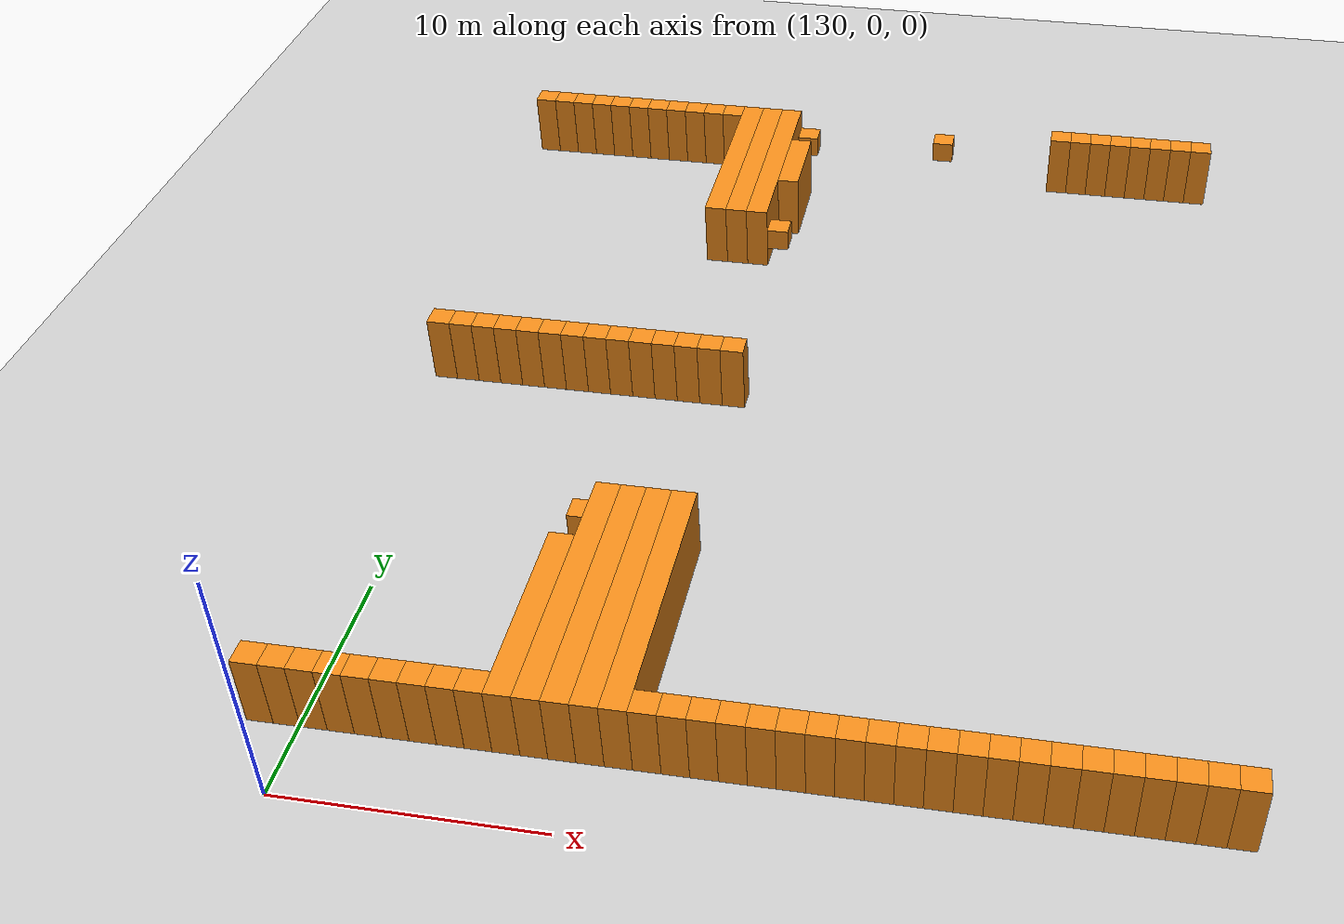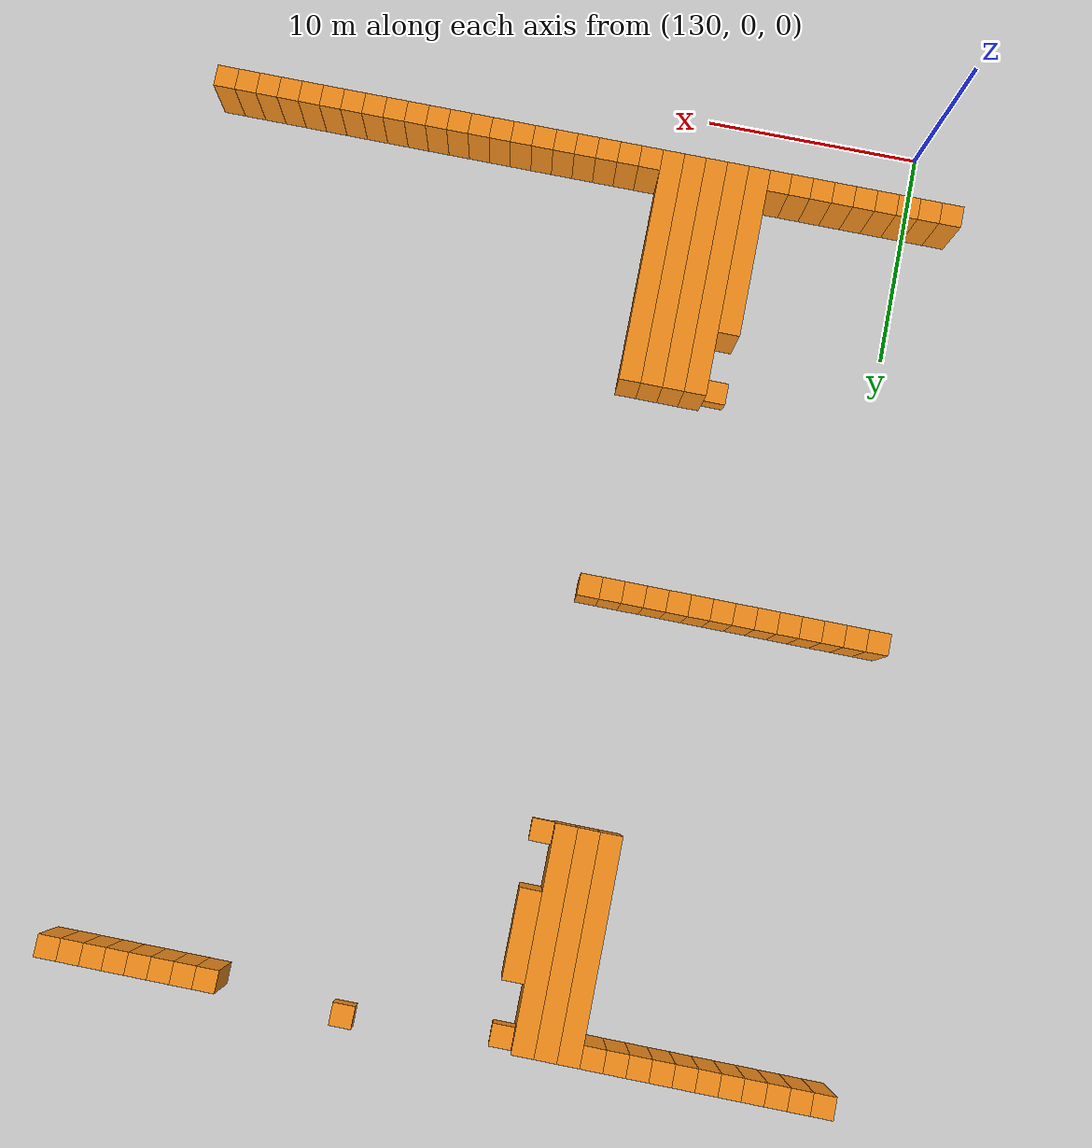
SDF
<sdf version="1.6">
 <world name="default">
  <include><uri>model://ground_plane</uri></include>
  <model name="unit_box_1386">
   <pose>127.50    43.50     1.50 0 0 0</pose>
   <static>1</static>
   <link name="link">
    <inertial>
     <mass>5000</mass>
     <inertia><ixx>200</ixx><ixy>0</ixy><ixz>0</ixz><iyy>200</iyy><iyz>0</iyz><izz>200</izz></inertia>
    </inertial>
    <collision name="collision"><geometry><box><size>1 1 3</size></box></geometry></collision>
    <visual name="visual">
     <geometry><box><size>1 1 3</size></box></geometry>
     <material>
      <script><name>Gazebo/Orange</name><uri>file://media/materials/scripts/gazebo.material</uri></script>
     </material>
    </visual>
   </link>
  </model>
  <model name="unit_box_1390">
   <pose>128.50     3.50     1.50 0 0 0</pose>
   <static>1</static>
   <link name="link">
    <inertial>
     <mass>5000</mass>
     <inertia><ixx>200</ixx><ixy>0</ixy><ixz>0</ixz><iyy>200</iyy><iyz>0</iyz><izz>200</izz></inertia>
    </inertial>
    <collision name="collision"><geometry><box><size>1 1 3</size></box></geometry></collision>
    <visual name="visual">
     <geometry><box><size>1 1 3</size></box></geometry>
     <material>
      <script><name>Gazebo/Orange</name><uri>file://media/materials/scripts/gazebo.material</uri></script>
     </material>
    </visual>
   </link>
  </model>
  <model name="unit_box_1391">
   <pose>128.50    23.50     1.50 0 0 0</pose>
   <static>1</static>
   <link name="link">
    <inertial>
     <mass>5000</mass>
     <inertia><ixx>200</ixx><ixy>0</ixy><ixz>0</ixz><iyy>200</iyy><iyz>0</iyz><izz>200</izz></inertia>
    </inertial>
    <collision name="collision"><geometry><box><size>1 1 3</size></box></geometry></collision>
    <visual name="visual">
     <geometry><box><size>1 1 3</size></box></geometry>
     <material>
      <script><name>Gazebo/Orange</name><uri>file://media/materials/scripts/gazebo.material</uri></script>
     </material>
    </visual>
   </link>
  </model>
  <model name="unit_box_1392">
   <pose>128.50    43.50     1.50 0 0 0</pose>
   <static>1</static>
   <link name="link">
    <inertial>
     <mass>5000</mass>
     <inertia><ixx>200</ixx><ixy>0</ixy><ixz>0</ixz><iyy>200</iyy><iyz>0</iyz><izz>200</izz></inertia>
    </inertial>
    <collision name="collision"><geometry><box><size>1 1 3</size></box></geometry></collision>
    <visual name="visual">
     <geometry><box><size>1 1 3</size></box></geometry>
     <material>
      <script><name>Gazebo/Orange</name><uri>file://media/materials/scripts/gazebo.material</uri></script>
     </material>
    </visual>
   </link>
  </model>
  <model name="unit_box_1397">
   <pose>129.50     3.50     1.50 0 0 0</pose>
   <static>1</static>
   <link name="link">
    <inertial>
     <mass>5000</mass>
     <inertia><ixx>200</ixx><ixy>0</ixy><ixz>0</ixz><iyy>200</iyy><iyz>0</iyz><izz>200</izz></inertia>
    </inertial>
    <collision name="collision"><geometry><box><size>1 1 3</size></box></geometry></collision>
    <visual name="visual">
     <geometry><box><size>1 1 3</size></box></geometry>
     <material>
      <script><name>Gazebo/Orange</name><uri>file://media/materials/scripts/gazebo.material</uri></script>
     </material>
    </visual>
   </link>
  </model>
  <model name="unit_box_1398">
   <pose>129.50    23.50     1.50 0 0 0</pose>
   <static>1</static>
   <link name="link">
    <inertial>
     <mass>5000</mass>
     <inertia><ixx>200</ixx><ixy>0</ixy><ixz>0</ixz><iyy>200</iyy><iyz>0</iyz><izz>200</izz></inertia>
    </inertial>
    <collision name="collision"><geometry><box><size>1 1 3</size></box></geometry></collision>
    <visual name="visual">
     <geometry><box><size>1 1 3</size></box></geometry>
     <material>
      <script><name>Gazebo/Orange</name><uri>file://media/materials/scripts/gazebo.material</uri></script>
     </material>
    </visual>
   </link>
  </model>
  <model name="unit_box_1399">
   <pose>129.50    43.50     1.50 0 0 0</pose>
   <static>1</static>
   <link name="link">
    <inertial>
     <mass>5000</mass>
     <inertia><ixx>200</ixx><ixy>0</ixy><ixz>0</ixz><iyy>200</iyy><iyz>0</iyz><izz>200</izz></inertia>
    </inertial>
    <collision name="collision"><geometry><box><size>1 1 3</size></box></geometry></collision>
    <visual name="visual">
     <geometry><box><size>1 1 3</size></box></geometry>
     <material>
      <script><name>Gazebo/Orange</name><uri>file://media/materials/scripts/gazebo.material</uri></script>
     </material>
    </visual>
   </link>
  </model>
  <model name="unit_box_1404">
   <pose>130.50     3.50     1.50 0 0 0</pose>
   <static>1</static>
   <link name="link">
    <inertial>
     <mass>5000</mass>
     <inertia><ixx>200</ixx><ixy>0</ixy><ixz>0</ixz><iyy>200</iyy><iyz>0</iyz><izz>200</izz></inertia>
    </inertial>
    <collision name="collision"><geometry><box><size>1 1 3</size></box></geometry></collision>
    <visual name="visual">
     <geometry><box><size>1 1 3</size></box></geometry>
     <material>
      <script><name>Gazebo/Orange</name><uri>file://media/materials/scripts/gazebo.material</uri></script>
     </material>
    </visual>
   </link>
  </model>
  <model name="unit_box_1405">
   <pose>130.50    23.50     1.50 0 0 0</pose>
   <static>1</static>
   <link name="link">
    <inertial>
     <mass>5000</mass>
     <inertia><ixx>200</ixx><ixy>0</ixy><ixz>0</ixz><iyy>200</iyy><iyz>0</iyz><izz>200</izz></inertia>
    </inertial>
    <collision name="collision"><geometry><box><size>1 1 3</size></box></geometry></collision>
    <visual name="visual">
     <geometry><box><size>1 1 3</size></box></geometry>
     <material>
      <script><name>Gazebo/Orange</name><uri>file://media/materials/scripts/gazebo.material</uri></script>
     </material>
    </visual>
   </link>
  </model>
  <model name="unit_box_1406">
   <pose>130.50    43.50     1.50 0 0 0</pose>
   <static>1</static>
   <link name="link">
    <inertial>
     <mass>5000</mass>
     <inertia><ixx>200</ixx><ixy>0</ixy><ixz>0</ixz><iyy>200</iyy><iyz>0</iyz><izz>200</izz></inertia>
    </inertial>
    <collision name="collision"><geometry><box><size>1 1 3</size></box></geometry></collision>
    <visual name="visual">
     <geometry><box><size>1 1 3</size></box></geometry>
     <material>
      <script><name>Gazebo/Orange</name><uri>file://media/materials/scripts/gazebo.material</uri></script>
     </material>
    </visual>
   </link>
  </model>
  <model name="unit_box_1412">
   <pose>131.50     3.50     1.50 0 0 0</pose>
   <static>1</static>
   <link name="link">
    <inertial>
     <mass>5000</mass>
     <inertia><ixx>200</ixx><ixy>0</ixy><ixz>0</ixz><iyy>200</iyy><iyz>0</iyz><izz>200</izz></inertia>
    </inertial>
    <collision name="collision"><geometry><box><size>1 1 3</size></box></geometry></collision>
    <visual name="visual">
     <geometry><box><size>1 1 3</size></box></geometry>
     <material>
      <script><name>Gazebo/Orange</name><uri>file://media/materials/scripts/gazebo.material</uri></script>
     </material>
    </visual>
   </link>
  </model>
  <model name="unit_box_1413">
   <pose>131.50    23.50     1.50 0 0 0</pose>
   <static>1</static>
   <link name="link">
    <inertial>
     <mass>5000</mass>
     <inertia><ixx>200</ixx><ixy>0</ixy><ixz>0</ixz><iyy>200</iyy><iyz>0</iyz><izz>200</izz></inertia>
    </inertial>
    <collision name="collision"><geometry><box><size>1 1 3</size></box></geometry></collision>
    <visual name="visual">
     <geometry><box><size>1 1 3</size></box></geometry>
     <material>
      <script><name>Gazebo/Orange</name><uri>file://media/materials/scripts/gazebo.material</uri></script>
     </material>
    </visual>
   </link>
  </model>
  <model name="unit_box_1414">
   <pose>131.50    43.50     1.50 0 0 0</pose>
   <static>1</static>
   <link name="link">
    <inertial>
     <mass>5000</mass>
     <inertia><ixx>200</ixx><ixy>0</ixy><ixz>0</ixz><iyy>200</iyy><iyz>0</iyz><izz>200</izz></inertia>
    </inertial>
    <collision name="collision"><geometry><box><size>1 1 3</size></box></geometry></collision>
    <visual name="visual">
     <geometry><box><size>1 1 3</size></box></geometry>
     <material>
      <script><name>Gazebo/Orange</name><uri>file://media/materials/scripts/gazebo.material</uri></script>
     </material>
    </visual>
   </link>
  </model>
  <model name="unit_box_1419">
   <pose>132.50     3.50     1.50 0 0 0</pose>
   <static>1</static>
   <link name="link">
    <inertial>
     <mass>5000</mass>
     <inertia><ixx>200</ixx><ixy>0</ixy><ixz>0</ixz><iyy>200</iyy><iyz>0</iyz><izz>200</izz></inertia>
    </inertial>
    <collision name="collision"><geometry><box><size>1 1 3</size></box></geometry></collision>
    <visual name="visual">
     <geometry><box><size>1 1 3</size></box></geometry>
     <material>
      <script><name>Gazebo/Orange</name><uri>file://media/materials/scripts/gazebo.material</uri></script>
     </material>
    </visual>
   </link>
  </model>
  <model name="unit_box_1420">
   <pose>132.50    23.50     1.50 0 0 0</pose>
   <static>1</static>
   <link name="link">
    <inertial>
     <mass>5000</mass>
     <inertia><ixx>200</ixx><ixy>0</ixy><ixz>0</ixz><iyy>200</iyy><iyz>0</iyz><izz>200</izz></inertia>
    </inertial>
    <collision name="collision"><geometry><box><size>1 1 3</size></box></geometry></collision>
    <visual name="visual">
     <geometry><box><size>1 1 3</size></box></geometry>
     <material>
      <script><name>Gazebo/Orange</name><uri>file://media/materials/scripts/gazebo.material</uri></script>
     </material>
    </visual>
   </link>
  </model>
  <model name="unit_box_1421">
   <pose>132.50    43.50     1.50 0 0 0</pose>
   <static>1</static>
   <link name="link">
    <inertial>
     <mass>5000</mass>
     <inertia><ixx>200</ixx><ixy>0</ixy><ixz>0</ixz><iyy>200</iyy><iyz>0</iyz><izz>200</izz></inertia>
    </inertial>
    <collision name="collision"><geometry><box><size>1 1 3</size></box></geometry></collision>
    <visual name="visual">
     <geometry><box><size>1 1 3</size></box></geometry>
     <material>
      <script><name>Gazebo/Orange</name><uri>file://media/materials/scripts/gazebo.material</uri></script>
     </material>
    </visual>
   </link>
  </model>
  <model name="unit_box_1426">
   <pose>133.50     3.50     1.50 0 0 0</pose>
   <static>1</static>
   <link name="link">
    <inertial>
     <mass>5000</mass>
     <inertia><ixx>200</ixx><ixy>0</ixy><ixz>0</ixz><iyy>200</iyy><iyz>0</iyz><izz>200</izz></inertia>
    </inertial>
    <collision name="collision"><geometry><box><size>1 1 3</size></box></geometry></collision>
    <visual name="visual">
     <geometry><box><size>1 1 3</size></box></geometry>
     <material>
      <script><name>Gazebo/Orange</name><uri>file://media/materials/scripts/gazebo.material</uri></script>
     </material>
    </visual>
   </link>
  </model>
  <model name="unit_box_1427">
   <pose>133.50    23.50     1.50 0 0 0</pose>
   <static>1</static>
   <link name="link">
    <inertial>
     <mass>5000</mass>
     <inertia><ixx>200</ixx><ixy>0</ixy><ixz>0</ixz><iyy>200</iyy><iyz>0</iyz><izz>200</izz></inertia>
    </inertial>
    <collision name="collision"><geometry><box><size>1 1 3</size></box></geometry></collision>
    <visual name="visual">
     <geometry><box><size>1 1 3</size></box></geometry>
     <material>
      <script><name>Gazebo/Orange</name><uri>file://media/materials/scripts/gazebo.material</uri></script>
     </material>
    </visual>
   </link>
  </model>
  <model name="unit_box_1428">
   <pose>133.50    43.50     1.50 0 0 0</pose>
   <static>1</static>
   <link name="link">
    <inertial>
     <mass>5000</mass>
     <inertia><ixx>200</ixx><ixy>0</ixy><ixz>0</ixz><iyy>200</iyy><iyz>0</iyz><izz>200</izz></inertia>
    </inertial>
    <collision name="collision"><geometry><box><size>1 1 3</size></box></geometry></collision>
    <visual name="visual">
     <geometry><box><size>1 1 3</size></box></geometry>
     <material>
      <script><name>Gazebo/Orange</name><uri>file://media/materials/scripts/gazebo.material</uri></script>
     </material>
    </visual>
   </link>
  </model>
  <model name="unit_box_1433">
   <pose>134.50     3.50     1.50 0 0 0</pose>
   <static>1</static>
   <link name="link">
    <inertial>
     <mass>5000</mass>
     <inertia><ixx>200</ixx><ixy>0</ixy><ixz>0</ixz><iyy>200</iyy><iyz>0</iyz><izz>200</izz></inertia>
    </inertial>
    <collision name="collision"><geometry><box><size>1 1 3</size></box></geometry></collision>
    <visual name="visual">
     <geometry><box><size>1 1 3</size></box></geometry>
     <material>
      <script><name>Gazebo/Orange</name><uri>file://media/materials/scripts/gazebo.material</uri></script>
     </material>
    </visual>
   </link>
  </model>
  <model name="unit_box_1434">
   <pose>134.50    23.50     1.50 0 0 0</pose>
   <static>1</static>
   <link name="link">
    <inertial>
     <mass>5000</mass>
     <inertia><ixx>200</ixx><ixy>0</ixy><ixz>0</ixz><iyy>200</iyy><iyz>0</iyz><izz>200</izz></inertia>
    </inertial>
    <collision name="collision"><geometry><box><size>1 1 3</size></box></geometry></collision>
    <visual name="visual">
     <geometry><box><size>1 1 3</size></box></geometry>
     <material>
      <script><name>Gazebo/Orange</name><uri>file://media/materials/scripts/gazebo.material</uri></script>
     </material>
    </visual>
   </link>
  </model>
  <model name="unit_box_1435">
   <pose>134.50    43.50     1.50 0 0 0</pose>
   <static>1</static>
   <link name="link">
    <inertial>
     <mass>5000</mass>
     <inertia><ixx>200</ixx><ixy>0</ixy><ixz>0</ixz><iyy>200</iyy><iyz>0</iyz><izz>200</izz></inertia>
    </inertial>
    <collision name="collision"><geometry><box><size>1 1 3</size></box></geometry></collision>
    <visual name="visual">
     <geometry><box><size>1 1 3</size></box></geometry>
     <material>
      <script><name>Gazebo/Orange</name><uri>file://media/materials/scripts/gazebo.material</uri></script>
     </material>
    </visual>
   </link>
  </model>
  <model name="unit_box_1440">
   <pose>135.50     3.50     1.50 0 0 0</pose>
   <static>1</static>
   <link name="link">
    <inertial>
     <mass>5000</mass>
     <inertia><ixx>200</ixx><ixy>0</ixy><ixz>0</ixz><iyy>200</iyy><iyz>0</iyz><izz>200</izz></inertia>
    </inertial>
    <collision name="collision"><geometry><box><size>1 1 3</size></box></geometry></collision>
    <visual name="visual">
     <geometry><box><size>1 1 3</size></box></geometry>
     <material>
      <script><name>Gazebo/Orange</name><uri>file://media/materials/scripts/gazebo.material</uri></script>
     </material>
    </visual>
   </link>
  </model>
  <model name="unit_box_1441">
   <pose>135.50    23.50     1.50 0 0 0</pose>
   <static>1</static>
   <link name="link">
    <inertial>
     <mass>5000</mass>
     <inertia><ixx>200</ixx><ixy>0</ixy><ixz>0</ixz><iyy>200</iyy><iyz>0</iyz><izz>200</izz></inertia>
    </inertial>
    <collision name="collision"><geometry><box><size>1 1 3</size></box></geometry></collision>
    <visual name="visual">
     <geometry><box><size>1 1 3</size></box></geometry>
     <material>
      <script><name>Gazebo/Orange</name><uri>file://media/materials/scripts/gazebo.material</uri></script>
     </material>
    </visual>
   </link>
  </model>
  <model name="unit_box_1442">
   <pose>135.50    43.50     1.50 0 0 0</pose>
   <static>1</static>
   <link name="link">
    <inertial>
     <mass>5000</mass>
     <inertia><ixx>200</ixx><ixy>0</ixy><ixz>0</ixz><iyy>200</iyy><iyz>0</iyz><izz>200</izz></inertia>
    </inertial>
    <collision name="collision"><geometry><box><size>1 1 3</size></box></geometry></collision>
    <visual name="visual">
     <geometry><box><size>1 1 3</size></box></geometry>
     <material>
      <script><name>Gazebo/Orange</name><uri>file://media/materials/scripts/gazebo.material</uri></script>
     </material>
    </visual>
   </link>
  </model>
  <model name="unit_box_1455">
   <pose>136.50     3.50     1.50 0 0 0</pose>
   <static>1</static>
   <link name="link">
    <inertial>
     <mass>5000</mass>
     <inertia><ixx>200</ixx><ixy>0</ixy><ixz>0</ixz><iyy>200</iyy><iyz>0</iyz><izz>200</izz></inertia>
    </inertial>
    <collision name="collision"><geometry><box><size>1 1 3</size></box></geometry></collision>
    <visual name="visual">
     <geometry><box><size>1 1 3</size></box></geometry>
     <material>
      <script><name>Gazebo/Orange</name><uri>file://media/materials/scripts/gazebo.material</uri></script>
     </material>
    </visual>
   </link>
  </model>
  <model name="unit_box_1456">
   <pose>136.50    23.50     1.50 0 0 0</pose>
   <static>1</static>
   <link name="link">
    <inertial>
     <mass>5000</mass>
     <inertia><ixx>200</ixx><ixy>0</ixy><ixz>0</ixz><iyy>200</iyy><iyz>0</iyz><izz>200</izz></inertia>
    </inertial>
    <collision name="collision"><geometry><box><size>1 1 3</size></box></geometry></collision>
    <visual name="visual">
     <geometry><box><size>1 1 3</size></box></geometry>
     <material>
      <script><name>Gazebo/Orange</name><uri>file://media/materials/scripts/gazebo.material</uri></script>
     </material>
    </visual>
   </link>
  </model>
  <model name="unit_box_1457">
   <pose>136.50    43.50     1.50 0 0 0</pose>
   <static>1</static>
   <link name="link">
    <inertial>
     <mass>5000</mass>
     <inertia><ixx>200</ixx><ixy>0</ixy><ixz>0</ixz><iyy>200</iyy><iyz>0</iyz><izz>200</izz></inertia>
    </inertial>
    <collision name="collision"><geometry><box><size>1 1 3</size></box></geometry></collision>
    <visual name="visual">
     <geometry><box><size>1 1 3</size></box></geometry>
     <material>
      <script><name>Gazebo/Orange</name><uri>file://media/materials/scripts/gazebo.material</uri></script>
     </material>
    </visual>
   </link>
  </model>
  <model name="unit_box_1468">
   <pose>137.50     7.00     1.50 0 0 0</pose>
   <static>1</static>
   <link name="link">
    <inertial>
     <mass>5000</mass>
     <inertia><ixx>200</ixx><ixy>0</ixy><ixz>0</ixz><iyy>200</iyy><iyz>0</iyz><izz>200</izz></inertia>
    </inertial>
    <collision name="collision"><geometry><box><size>1 8 3</size></box></geometry></collision>
    <visual name="visual">
     <geometry><box><size>1 8 3</size></box></geometry>
     <material>
      <script><name>Gazebo/Orange</name><uri>file://media/materials/scripts/gazebo.material</uri></script>
     </material>
    </visual>
   </link>
  </model>
  <model name="unit_box_1469">
   <pose>137.50    13.50     1.50 0 0 0</pose>
   <static>1</static>
   <link name="link">
    <inertial>
     <mass>5000</mass>
     <inertia><ixx>200</ixx><ixy>0</ixy><ixz>0</ixz><iyy>200</iyy><iyz>0</iyz><izz>200</izz></inertia>
    </inertial>
    <collision name="collision"><geometry><box><size>1 1 1</size></box></geometry></collision>
    <visual name="visual">
     <geometry><box><size>1 1 1</size></box></geometry>
     <material>
      <script><name>Gazebo/Orange</name><uri>file://media/materials/scripts/gazebo.material</uri></script>
     </material>
    </visual>
   </link>
  </model>
  <model name="unit_box_1470">
   <pose>137.50    23.50     1.50 0 0 0</pose>
   <static>1</static>
   <link name="link">
    <inertial>
     <mass>5000</mass>
     <inertia><ixx>200</ixx><ixy>0</ixy><ixz>0</ixz><iyy>200</iyy><iyz>0</iyz><izz>200</izz></inertia>
    </inertial>
    <collision name="collision"><geometry><box><size>1 1 3</size></box></geometry></collision>
    <visual name="visual">
     <geometry><box><size>1 1 3</size></box></geometry>
     <material>
      <script><name>Gazebo/Orange</name><uri>file://media/materials/scripts/gazebo.material</uri></script>
     </material>
    </visual>
   </link>
  </model>
  <model name="unit_box_1471">
   <pose>137.50    43.50     1.50 0 0 0</pose>
   <static>1</static>
   <link name="link">
    <inertial>
     <mass>5000</mass>
     <inertia><ixx>200</ixx><ixy>0</ixy><ixz>0</ixz><iyy>200</iyy><iyz>0</iyz><izz>200</izz></inertia>
    </inertial>
    <collision name="collision"><geometry><box><size>1 1 3</size></box></geometry></collision>
    <visual name="visual">
     <geometry><box><size>1 1 3</size></box></geometry>
     <material>
      <script><name>Gazebo/Orange</name><uri>file://media/materials/scripts/gazebo.material</uri></script>
     </material>
    </visual>
   </link>
  </model>
  <model name="unit_box_1482">
   <pose>138.50     8.50     1.50 0 0 0</pose>
   <static>1</static>
   <link name="link">
    <inertial>
     <mass>5000</mass>
     <inertia><ixx>200</ixx><ixy>0</ixy><ixz>0</ixz><iyy>200</iyy><iyz>0</iyz><izz>200</izz></inertia>
    </inertial>
    <collision name="collision"><geometry><box><size>1 11 3</size></box></geometry></collision>
    <visual name="visual">
     <geometry><box><size>1 11 3</size></box></geometry>
     <material>
      <script><name>Gazebo/Orange</name><uri>file://media/materials/scripts/gazebo.material</uri></script>
     </material>
    </visual>
   </link>
  </model>
  <model name="unit_box_1483">
   <pose>138.50    23.50     1.50 0 0 0</pose>
   <static>1</static>
   <link name="link">
    <inertial>
     <mass>5000</mass>
     <inertia><ixx>200</ixx><ixy>0</ixy><ixz>0</ixz><iyy>200</iyy><iyz>0</iyz><izz>200</izz></inertia>
    </inertial>
    <collision name="collision"><geometry><box><size>1 1 3</size></box></geometry></collision>
    <visual name="visual">
     <geometry><box><size>1 1 3</size></box></geometry>
     <material>
      <script><name>Gazebo/Orange</name><uri>file://media/materials/scripts/gazebo.material</uri></script>
     </material>
    </visual>
   </link>
  </model>
  <model name="unit_box_1484">
   <pose>138.50    39.00     1.50 0 0 0</pose>
   <static>1</static>
   <link name="link">
    <inertial>
     <mass>5000</mass>
     <inertia><ixx>200</ixx><ixy>0</ixy><ixz>0</ixz><iyy>200</iyy><iyz>0</iyz><izz>200</izz></inertia>
    </inertial>
    <collision name="collision"><geometry><box><size>1 10 3</size></box></geometry></collision>
    <visual name="visual">
     <geometry><box><size>1 10 3</size></box></geometry>
     <material>
      <script><name>Gazebo/Orange</name><uri>file://media/materials/scripts/gazebo.material</uri></script>
     </material>
    </visual>
   </link>
  </model>
  <model name="unit_box_1495">
   <pose>139.50     8.50     1.50 0 0 0</pose>
   <static>1</static>
   <link name="link">
    <inertial>
     <mass>5000</mass>
     <inertia><ixx>200</ixx><ixy>0</ixy><ixz>0</ixz><iyy>200</iyy><iyz>0</iyz><izz>200</izz></inertia>
    </inertial>
    <collision name="collision"><geometry><box><size>1 11 3</size></box></geometry></collision>
    <visual name="visual">
     <geometry><box><size>1 11 3</size></box></geometry>
     <material>
      <script><name>Gazebo/Orange</name><uri>file://media/materials/scripts/gazebo.material</uri></script>
     </material>
    </visual>
   </link>
  </model>
  <model name="unit_box_1496">
   <pose>139.50    23.50     1.50 0 0 0</pose>
   <static>1</static>
   <link name="link">
    <inertial>
     <mass>5000</mass>
     <inertia><ixx>200</ixx><ixy>0</ixy><ixz>0</ixz><iyy>200</iyy><iyz>0</iyz><izz>200</izz></inertia>
    </inertial>
    <collision name="collision"><geometry><box><size>1 1 3</size></box></geometry></collision>
    <visual name="visual">
     <geometry><box><size>1 1 3</size></box></geometry>
     <material>
      <script><name>Gazebo/Orange</name><uri>file://media/materials/scripts/gazebo.material</uri></script>
     </material>
    </visual>
   </link>
  </model>
  <model name="unit_box_1497">
   <pose>139.50    39.00     1.50 0 0 0</pose>
   <static>1</static>
   <link name="link">
    <inertial>
     <mass>5000</mass>
     <inertia><ixx>200</ixx><ixy>0</ixy><ixz>0</ixz><iyy>200</iyy><iyz>0</iyz><izz>200</izz></inertia>
    </inertial>
    <collision name="collision"><geometry><box><size>1 10 3</size></box></geometry></collision>
    <visual name="visual">
     <geometry><box><size>1 10 3</size></box></geometry>
     <material>
      <script><name>Gazebo/Orange</name><uri>file://media/materials/scripts/gazebo.material</uri></script>
     </material>
    </visual>
   </link>
  </model>
  <model name="unit_box_1508">
   <pose>140.50     8.50     1.50 0 0 0</pose>
   <static>1</static>
   <link name="link">
    <inertial>
     <mass>5000</mass>
     <inertia><ixx>200</ixx><ixy>0</ixy><ixz>0</ixz><iyy>200</iyy><iyz>0</iyz><izz>200</izz></inertia>
    </inertial>
    <collision name="collision"><geometry><box><size>1 11 3</size></box></geometry></collision>
    <visual name="visual">
     <geometry><box><size>1 11 3</size></box></geometry>
     <material>
      <script><name>Gazebo/Orange</name><uri>file://media/materials/scripts/gazebo.material</uri></script>
     </material>
    </visual>
   </link>
  </model>
  <model name="unit_box_1509">
   <pose>140.50    23.50     1.50 0 0 0</pose>
   <static>1</static>
   <link name="link">
    <inertial>
     <mass>5000</mass>
     <inertia><ixx>200</ixx><ixy>0</ixy><ixz>0</ixz><iyy>200</iyy><iyz>0</iyz><izz>200</izz></inertia>
    </inertial>
    <collision name="collision"><geometry><box><size>1 1 3</size></box></geometry></collision>
    <visual name="visual">
     <geometry><box><size>1 1 3</size></box></geometry>
     <material>
      <script><name>Gazebo/Orange</name><uri>file://media/materials/scripts/gazebo.material</uri></script>
     </material>
    </visual>
   </link>
  </model>
  <model name="unit_box_1510">
   <pose>140.50    39.00     1.50 0 0 0</pose>
   <static>1</static>
   <link name="link">
    <inertial>
     <mass>5000</mass>
     <inertia><ixx>200</ixx><ixy>0</ixy><ixz>0</ixz><iyy>200</iyy><iyz>0</iyz><izz>200</izz></inertia>
    </inertial>
    <collision name="collision"><geometry><box><size>1 10 3</size></box></geometry></collision>
    <visual name="visual">
     <geometry><box><size>1 10 3</size></box></geometry>
     <material>
      <script><name>Gazebo/Orange</name><uri>file://media/materials/scripts/gazebo.material</uri></script>
     </material>
    </visual>
   </link>
  </model>
  <model name="unit_box_1520">
   <pose>141.50     8.50     1.50 0 0 0</pose>
   <static>1</static>
   <link name="link">
    <inertial>
     <mass>5000</mass>
     <inertia><ixx>200</ixx><ixy>0</ixy><ixz>0</ixz><iyy>200</iyy><iyz>0</iyz><izz>200</izz></inertia>
    </inertial>
    <collision name="collision"><geometry><box><size>1 11 3</size></box></geometry></collision>
    <visual name="visual">
     <geometry><box><size>1 11 3</size></box></geometry>
     <material>
      <script><name>Gazebo/Orange</name><uri>file://media/materials/scripts/gazebo.material</uri></script>
     </material>
    </visual>
   </link>
  </model>
  <model name="unit_box_1521">
   <pose>141.50    23.50     1.50 0 0 0</pose>
   <static>1</static>
   <link name="link">
    <inertial>
     <mass>5000</mass>
     <inertia><ixx>200</ixx><ixy>0</ixy><ixz>0</ixz><iyy>200</iyy><iyz>0</iyz><izz>200</izz></inertia>
    </inertial>
    <collision name="collision"><geometry><box><size>1 1 3</size></box></geometry></collision>
    <visual name="visual">
     <geometry><box><size>1 1 3</size></box></geometry>
     <material>
      <script><name>Gazebo/Orange</name><uri>file://media/materials/scripts/gazebo.material</uri></script>
     </material>
    </visual>
   </link>
  </model>
  <model name="unit_box_1522">
   <pose>141.50    34.50     1.50 0 0 0</pose>
   <static>1</static>
   <link name="link">
    <inertial>
     <mass>5000</mass>
     <inertia><ixx>200</ixx><ixy>0</ixy><ixz>0</ixz><iyy>200</iyy><iyz>0</iyz><izz>200</izz></inertia>
    </inertial>
    <collision name="collision"><geometry><box><size>1 1 1</size></box></geometry></collision>
    <visual name="visual">
     <geometry><box><size>1 1 1</size></box></geometry>
     <material>
      <script><name>Gazebo/Orange</name><uri>file://media/materials/scripts/gazebo.material</uri></script>
     </material>
    </visual>
   </link>
  </model>
  <model name="unit_box_1523">
   <pose>141.50    39.00     1.50 0 0 0</pose>
   <static>1</static>
   <link name="link">
    <inertial>
     <mass>5000</mass>
     <inertia><ixx>200</ixx><ixy>0</ixy><ixz>0</ixz><iyy>200</iyy><iyz>0</iyz><izz>200</izz></inertia>
    </inertial>
    <collision name="collision"><geometry><box><size>1 4 3</size></box></geometry></collision>
    <visual name="visual">
     <geometry><box><size>1 4 3</size></box></geometry>
     <material>
      <script><name>Gazebo/Orange</name><uri>file://media/materials/scripts/gazebo.material</uri></script>
     </material>
    </visual>
   </link>
  </model>
  <model name="unit_box_1524">
   <pose>141.50    43.50     1.50 0 0 0</pose>
   <static>1</static>
   <link name="link">
    <inertial>
     <mass>5000</mass>
     <inertia><ixx>200</ixx><ixy>0</ixy><ixz>0</ixz><iyy>200</iyy><iyz>0</iyz><izz>200</izz></inertia>
    </inertial>
    <collision name="collision"><geometry><box><size>1 1 1</size></box></geometry></collision>
    <visual name="visual">
     <geometry><box><size>1 1 1</size></box></geometry>
     <material>
      <script><name>Gazebo/Orange</name><uri>file://media/materials/scripts/gazebo.material</uri></script>
     </material>
    </visual>
   </link>
  </model>
  <model name="unit_box_1532">
   <pose>142.50     3.50     1.50 0 0 0</pose>
   <static>1</static>
   <link name="link">
    <inertial>
     <mass>5000</mass>
     <inertia><ixx>200</ixx><ixy>0</ixy><ixz>0</ixz><iyy>200</iyy><iyz>0</iyz><izz>200</izz></inertia>
    </inertial>
    <collision name="collision"><geometry><box><size>1 1 3</size></box></geometry></collision>
    <visual name="visual">
     <geometry><box><size>1 1 3</size></box></geometry>
     <material>
      <script><name>Gazebo/Orange</name><uri>file://media/materials/scripts/gazebo.material</uri></script>
     </material>
    </visual>
   </link>
  </model>
  <model name="unit_box_1539">
   <pose>143.50     3.50     1.50 0 0 0</pose>
   <static>1</static>
   <link name="link">
    <inertial>
     <mass>5000</mass>
     <inertia><ixx>200</ixx><ixy>0</ixy><ixz>0</ixz><iyy>200</iyy><iyz>0</iyz><izz>200</izz></inertia>
    </inertial>
    <collision name="collision"><geometry><box><size>1 1 3</size></box></geometry></collision>
    <visual name="visual">
     <geometry><box><size>1 1 3</size></box></geometry>
     <material>
      <script><name>Gazebo/Orange</name><uri>file://media/materials/scripts/gazebo.material</uri></script>
     </material>
    </visual>
   </link>
  </model>
  <model name="unit_box_1546">
   <pose>144.50     3.50     1.50 0 0 0</pose>
   <static>1</static>
   <link name="link">
    <inertial>
     <mass>5000</mass>
     <inertia><ixx>200</ixx><ixy>0</ixy><ixz>0</ixz><iyy>200</iyy><iyz>0</iyz><izz>200</izz></inertia>
    </inertial>
    <collision name="collision"><geometry><box><size>1 1 3</size></box></geometry></collision>
    <visual name="visual">
     <geometry><box><size>1 1 3</size></box></geometry>
     <material>
      <script><name>Gazebo/Orange</name><uri>file://media/materials/scripts/gazebo.material</uri></script>
     </material>
    </visual>
   </link>
  </model>
  <model name="unit_box_1553">
   <pose>145.50     3.50     1.50 0 0 0</pose>
   <static>1</static>
   <link name="link">
    <inertial>
     <mass>5000</mass>
     <inertia><ixx>200</ixx><ixy>0</ixy><ixz>0</ixz><iyy>200</iyy><iyz>0</iyz><izz>200</izz></inertia>
    </inertial>
    <collision name="collision"><geometry><box><size>1 1 3</size></box></geometry></collision>
    <visual name="visual">
     <geometry><box><size>1 1 3</size></box></geometry>
     <material>
      <script><name>Gazebo/Orange</name><uri>file://media/materials/scripts/gazebo.material</uri></script>
     </material>
    </visual>
   </link>
  </model>
  <model name="unit_box_1560">
   <pose>146.50     3.50     1.50 0 0 0</pose>
   <static>1</static>
   <link name="link">
    <inertial>
     <mass>5000</mass>
     <inertia><ixx>200</ixx><ixy>0</ixy><ixz>0</ixz><iyy>200</iyy><iyz>0</iyz><izz>200</izz></inertia>
    </inertial>
    <collision name="collision"><geometry><box><size>1 1 3</size></box></geometry></collision>
    <visual name="visual">
     <geometry><box><size>1 1 3</size></box></geometry>
     <material>
      <script><name>Gazebo/Orange</name><uri>file://media/materials/scripts/gazebo.material</uri></script>
     </material>
    </visual>
   </link>
  </model>
  <model name="unit_box_1567">
   <pose>147.50     3.50     1.50 0 0 0</pose>
   <static>1</static>
   <link name="link">
    <inertial>
     <mass>5000</mass>
     <inertia><ixx>200</ixx><ixy>0</ixy><ixz>0</ixz><iyy>200</iyy><iyz>0</iyz><izz>200</izz></inertia>
    </inertial>
    <collision name="collision"><geometry><box><size>1 1 3</size></box></geometry></collision>
    <visual name="visual">
     <geometry><box><size>1 1 3</size></box></geometry>
     <material>
      <script><name>Gazebo/Orange</name><uri>file://media/materials/scripts/gazebo.material</uri></script>
     </material>
    </visual>
   </link>
  </model>
  <model name="unit_box_1574">
   <pose>148.50     3.50     1.50 0 0 0</pose>
   <static>1</static>
   <link name="link">
    <inertial>
     <mass>5000</mass>
     <inertia><ixx>200</ixx><ixy>0</ixy><ixz>0</ixz><iyy>200</iyy><iyz>0</iyz><izz>200</izz></inertia>
    </inertial>
    <collision name="collision"><geometry><box><size>1 1 3</size></box></geometry></collision>
    <visual name="visual">
     <geometry><box><size>1 1 3</size></box></geometry>
     <material>
      <script><name>Gazebo/Orange</name><uri>file://media/materials/scripts/gazebo.material</uri></script>
     </material>
    </visual>
   </link>
  </model>
  <model name="unit_box_1575">
   <pose>148.50    44.00     1.50 0 0 0</pose>
   <static>1</static>
   <link name="link">
    <inertial>
     <mass>5000</mass>
     <inertia><ixx>200</ixx><ixy>0</ixy><ixz>0</ixz><iyy>200</iyy><iyz>0</iyz><izz>200</izz></inertia>
    </inertial>
    <collision name="collision"><geometry><box><size>1 1 1</size></box></geometry></collision>
    <visual name="visual">
     <geometry><box><size>1 1 1</size></box></geometry>
     <material>
      <script><name>Gazebo/Orange</name><uri>file://media/materials/scripts/gazebo.material</uri></script>
     </material>
    </visual>
   </link>
  </model>
  <model name="unit_box_1582">
   <pose>149.50     3.50     1.50 0 0 0</pose>
   <static>1</static>
   <link name="link">
    <inertial>
     <mass>5000</mass>
     <inertia><ixx>200</ixx><ixy>0</ixy><ixz>0</ixz><iyy>200</iyy><iyz>0</iyz><izz>200</izz></inertia>
    </inertial>
    <collision name="collision"><geometry><box><size>1 1 3</size></box></geometry></collision>
    <visual name="visual">
     <geometry><box><size>1 1 3</size></box></geometry>
     <material>
      <script><name>Gazebo/Orange</name><uri>file://media/materials/scripts/gazebo.material</uri></script>
     </material>
    </visual>
   </link>
  </model>
  <model name="unit_box_1591">
   <pose>150.50     3.50     1.50 0 0 0</pose>
   <static>1</static>
   <link name="link">
    <inertial>
     <mass>5000</mass>
     <inertia><ixx>200</ixx><ixy>0</ixy><ixz>0</ixz><iyy>200</iyy><iyz>0</iyz><izz>200</izz></inertia>
    </inertial>
    <collision name="collision"><geometry><box><size>1 1 3</size></box></geometry></collision>
    <visual name="visual">
     <geometry><box><size>1 1 3</size></box></geometry>
     <material>
      <script><name>Gazebo/Orange</name><uri>file://media/materials/scripts/gazebo.material</uri></script>
     </material>
    </visual>
   </link>
  </model>
  <model name="unit_box_1599">
   <pose>151.50     3.50     1.50 0 0 0</pose>
   <static>1</static>
   <link name="link">
    <inertial>
     <mass>5000</mass>
     <inertia><ixx>200</ixx><ixy>0</ixy><ixz>0</ixz><iyy>200</iyy><iyz>0</iyz><izz>200</izz></inertia>
    </inertial>
    <collision name="collision"><geometry><box><size>1 1 3</size></box></geometry></collision>
    <visual name="visual">
     <geometry><box><size>1 1 3</size></box></geometry>
     <material>
      <script><name>Gazebo/Orange</name><uri>file://media/materials/scripts/gazebo.material</uri></script>
     </material>
    </visual>
   </link>
  </model>
  <model name="unit_box_1608">
   <pose>152.50     3.50     1.50 0 0 0</pose>
   <static>1</static>
   <link name="link">
    <inertial>
     <mass>5000</mass>
     <inertia><ixx>200</ixx><ixy>0</ixy><ixz>0</ixz><iyy>200</iyy><iyz>0</iyz><izz>200</izz></inertia>
    </inertial>
    <collision name="collision"><geometry><box><size>1 1 3</size></box></geometry></collision>
    <visual name="visual">
     <geometry><box><size>1 1 3</size></box></geometry>
     <material>
      <script><name>Gazebo/Orange</name><uri>file://media/materials/scripts/gazebo.material</uri></script>
     </material>
    </visual>
   </link>
  </model>
  <model name="unit_box_1617">
   <pose>153.50     3.50     1.50 0 0 0</pose>
   <static>1</static>
   <link name="link">
    <inertial>
     <mass>5000</mass>
     <inertia><ixx>200</ixx><ixy>0</ixy><ixz>0</ixz><iyy>200</iyy><iyz>0</iyz><izz>200</izz></inertia>
    </inertial>
    <collision name="collision"><geometry><box><size>1 1 3</size></box></geometry></collision>
    <visual name="visual">
     <geometry><box><size>1 1 3</size></box></geometry>
     <material>
      <script><name>Gazebo/Orange</name><uri>file://media/materials/scripts/gazebo.material</uri></script>
     </material>
    </visual>
   </link>
  </model>
  <model name="unit_box_1625">
   <pose>154.50     3.50     1.50 0 0 0</pose>
   <static>1</static>
   <link name="link">
    <inertial>
     <mass>5000</mass>
     <inertia><ixx>200</ixx><ixy>0</ixy><ixz>0</ixz><iyy>200</iyy><iyz>0</iyz><izz>200</izz></inertia>
    </inertial>
    <collision name="collision"><geometry><box><size>1 1 3</size></box></geometry></collision>
    <visual name="visual">
     <geometry><box><size>1 1 3</size></box></geometry>
     <material>
      <script><name>Gazebo/Orange</name><uri>file://media/materials/scripts/gazebo.material</uri></script>
     </material>
    </visual>
   </link>
  </model>
  <model name="unit_box_1626">
   <pose>154.50    43.50     1.50 0 0 0</pose>
   <static>1</static>
   <link name="link">
    <inertial>
     <mass>5000</mass>
     <inertia><ixx>200</ixx><ixy>0</ixy><ixz>0</ixz><iyy>200</iyy><iyz>0</iyz><izz>200</izz></inertia>
    </inertial>
    <collision name="collision"><geometry><box><size>1 1 3</size></box></geometry></collision>
    <visual name="visual">
     <geometry><box><size>1 1 3</size></box></geometry>
     <material>
      <script><name>Gazebo/Orange</name><uri>file://media/materials/scripts/gazebo.material</uri></script>
     </material>
    </visual>
   </link>
  </model>
  <model name="unit_box_1635">
   <pose>155.50     3.50     1.50 0 0 0</pose>
   <static>1</static>
   <link name="link">
    <inertial>
     <mass>5000</mass>
     <inertia><ixx>200</ixx><ixy>0</ixy><ixz>0</ixz><iyy>200</iyy><iyz>0</iyz><izz>200</izz></inertia>
    </inertial>
    <collision name="collision"><geometry><box><size>1 1 3</size></box></geometry></collision>
    <visual name="visual">
     <geometry><box><size>1 1 3</size></box></geometry>
     <material>
      <script><name>Gazebo/Orange</name><uri>file://media/materials/scripts/gazebo.material</uri></script>
     </material>
    </visual>
   </link>
  </model>
  <model name="unit_box_1636">
   <pose>155.50    43.50     1.50 0 0 0</pose>
   <static>1</static>
   <link name="link">
    <inertial>
     <mass>5000</mass>
     <inertia><ixx>200</ixx><ixy>0</ixy><ixz>0</ixz><iyy>200</iyy><iyz>0</iyz><izz>200</izz></inertia>
    </inertial>
    <collision name="collision"><geometry><box><size>1 1 3</size></box></geometry></collision>
    <visual name="visual">
     <geometry><box><size>1 1 3</size></box></geometry>
     <material>
      <script><name>Gazebo/Orange</name><uri>file://media/materials/scripts/gazebo.material</uri></script>
     </material>
    </visual>
   </link>
  </model>
  <model name="unit_box_1643">
   <pose>156.50     3.50     1.50 0 0 0</pose>
   <static>1</static>
   <link name="link">
    <inertial>
     <mass>5000</mass>
     <inertia><ixx>200</ixx><ixy>0</ixy><ixz>0</ixz><iyy>200</iyy><iyz>0</iyz><izz>200</izz></inertia>
    </inertial>
    <collision name="collision"><geometry><box><size>1 1 3</size></box></geometry></collision>
    <visual name="visual">
     <geometry><box><size>1 1 3</size></box></geometry>
     <material>
      <script><name>Gazebo/Orange</name><uri>file://media/materials/scripts/gazebo.material</uri></script>
     </material>
    </visual>
   </link>
  </model>
  <model name="unit_box_1644">
   <pose>156.50    43.50     1.50 0 0 0</pose>
   <static>1</static>
   <link name="link">
    <inertial>
     <mass>5000</mass>
     <inertia><ixx>200</ixx><ixy>0</ixy><ixz>0</ixz><iyy>200</iyy><iyz>0</iyz><izz>200</izz></inertia>
    </inertial>
    <collision name="collision"><geometry><box><size>1 1 3</size></box></geometry></collision>
    <visual name="visual">
     <geometry><box><size>1 1 3</size></box></geometry>
     <material>
      <script><name>Gazebo/Orange</name><uri>file://media/materials/scripts/gazebo.material</uri></script>
     </material>
    </visual>
   </link>
  </model>
  <model name="unit_box_1651">
   <pose>157.50     3.50     1.50 0 0 0</pose>
   <static>1</static>
   <link name="link">
    <inertial>
     <mass>5000</mass>
     <inertia><ixx>200</ixx><ixy>0</ixy><ixz>0</ixz><iyy>200</iyy><iyz>0</iyz><izz>200</izz></inertia>
    </inertial>
    <collision name="collision"><geometry><box><size>1 1 3</size></box></geometry></collision>
    <visual name="visual">
     <geometry><box><size>1 1 3</size></box></geometry>
     <material>
      <script><name>Gazebo/Orange</name><uri>file://media/materials/scripts/gazebo.material</uri></script>
     </material>
    </visual>
   </link>
  </model>
  <model name="unit_box_1652">
   <pose>157.50    43.50     1.50 0 0 0</pose>
   <static>1</static>
   <link name="link">
    <inertial>
     <mass>5000</mass>
     <inertia><ixx>200</ixx><ixy>0</ixy><ixz>0</ixz><iyy>200</iyy><iyz>0</iyz><izz>200</izz></inertia>
    </inertial>
    <collision name="collision"><geometry><box><size>1 1 3</size></box></geometry></collision>
    <visual name="visual">
     <geometry><box><size>1 1 3</size></box></geometry>
     <material>
      <script><name>Gazebo/Orange</name><uri>file://media/materials/scripts/gazebo.material</uri></script>
     </material>
    </visual>
   </link>
  </model>
  <model name="unit_box_1659">
   <pose>158.50     3.50     1.50 0 0 0</pose>
   <static>1</static>
   <link name="link">
    <inertial>
     <mass>5000</mass>
     <inertia><ixx>200</ixx><ixy>0</ixy><ixz>0</ixz><iyy>200</iyy><iyz>0</iyz><izz>200</izz></inertia>
    </inertial>
    <collision name="collision"><geometry><box><size>1 1 3</size></box></geometry></collision>
    <visual name="visual">
     <geometry><box><size>1 1 3</size></box></geometry>
     <material>
      <script><name>Gazebo/Orange</name><uri>file://media/materials/scripts/gazebo.material</uri></script>
     </material>
    </visual>
   </link>
  </model>
  <model name="unit_box_1660">
   <pose>158.50    43.50     1.50 0 0 0</pose>
   <static>1</static>
   <link name="link">
    <inertial>
     <mass>5000</mass>
     <inertia><ixx>200</ixx><ixy>0</ixy><ixz>0</ixz><iyy>200</iyy><iyz>0</iyz><izz>200</izz></inertia>
    </inertial>
    <collision name="collision"><geometry><box><size>1 1 3</size></box></geometry></collision>
    <visual name="visual">
     <geometry><box><size>1 1 3</size></box></geometry>
     <material>
      <script><name>Gazebo/Orange</name><uri>file://media/materials/scripts/gazebo.material</uri></script>
     </material>
    </visual>
   </link>
  </model>
  <model name="unit_box_1667">
   <pose>159.50     3.50     1.50 0 0 0</pose>
   <static>1</static>
   <link name="link">
    <inertial>
     <mass>5000</mass>
     <inertia><ixx>200</ixx><ixy>0</ixy><ixz>0</ixz><iyy>200</iyy><iyz>0</iyz><izz>200</izz></inertia>
    </inertial>
    <collision name="collision"><geometry><box><size>1 1 3</size></box></geometry></collision>
    <visual name="visual">
     <geometry><box><size>1 1 3</size></box></geometry>
     <material>
      <script><name>Gazebo/Orange</name><uri>file://media/materials/scripts/gazebo.material</uri></script>
     </material>
    </visual>
   </link>
  </model>
  <model name="unit_box_1668">
   <pose>159.50    43.50     1.50 0 0 0</pose>
   <static>1</static>
   <link name="link">
    <inertial>
     <mass>5000</mass>
     <inertia><ixx>200</ixx><ixy>0</ixy><ixz>0</ixz><iyy>200</iyy><iyz>0</iyz><izz>200</izz></inertia>
    </inertial>
    <collision name="collision"><geometry><box><size>1 1 3</size></box></geometry></collision>
    <visual name="visual">
     <geometry><box><size>1 1 3</size></box></geometry>
     <material>
      <script><name>Gazebo/Orange</name><uri>file://media/materials/scripts/gazebo.material</uri></script>
     </material>
    </visual>
   </link>
  </model>
  <model name="unit_box_1674">
   <pose>160.50     3.50     1.50 0 0 0</pose>
   <static>1</static>
   <link name="link">
    <inertial>
     <mass>5000</mass>
     <inertia><ixx>200</ixx><ixy>0</ixy><ixz>0</ixz><iyy>200</iyy><iyz>0</iyz><izz>200</izz></inertia>
    </inertial>
    <collision name="collision"><geometry><box><size>1 1 3</size></box></geometry></collision>
    <visual name="visual">
     <geometry><box><size>1 1 3</size></box></geometry>
     <material>
      <script><name>Gazebo/Orange</name><uri>file://media/materials/scripts/gazebo.material</uri></script>
     </material>
    </visual>
   </link>
  </model>
  <model name="unit_box_1675">
   <pose>160.50    43.50     1.50 0 0 0</pose>
   <static>1</static>
   <link name="link">
    <inertial>
     <mass>5000</mass>
     <inertia><ixx>200</ixx><ixy>0</ixy><ixz>0</ixz><iyy>200</iyy><iyz>0</iyz><izz>200</izz></inertia>
    </inertial>
    <collision name="collision"><geometry><box><size>1 1 3</size></box></geometry></collision>
    <visual name="visual">
     <geometry><box><size>1 1 3</size></box></geometry>
     <material>
      <script><name>Gazebo/Orange</name><uri>file://media/materials/scripts/gazebo.material</uri></script>
     </material>
    </visual>
   </link>
  </model>
  <model name="unit_box_1683">
   <pose>161.50     3.50     1.50 0 0 0</pose>
   <static>1</static>
   <link name="link">
    <inertial>
     <mass>5000</mass>
     <inertia><ixx>200</ixx><ixy>0</ixy><ixz>0</ixz><iyy>200</iyy><iyz>0</iyz><izz>200</izz></inertia>
    </inertial>
    <collision name="collision"><geometry><box><size>1 1 3</size></box></geometry></collision>
    <visual name="visual">
     <geometry><box><size>1 1 3</size></box></geometry>
     <material>
      <script><name>Gazebo/Orange</name><uri>file://media/materials/scripts/gazebo.material</uri></script>
     </material>
    </visual>
   </link>
  </model>
  <model name="unit_box_1684">
   <pose>161.50    43.50     1.50 0 0 0</pose>
   <static>1</static>
   <link name="link">
    <inertial>
     <mass>5000</mass>
     <inertia><ixx>200</ixx><ixy>0</ixy><ixz>0</ixz><iyy>200</iyy><iyz>0</iyz><izz>200</izz></inertia>
    </inertial>
    <collision name="collision"><geometry><box><size>1 1 3</size></box></geometry></collision>
    <visual name="visual">
     <geometry><box><size>1 1 3</size></box></geometry>
     <material>
      <script><name>Gazebo/Orange</name><uri>file://media/materials/scripts/gazebo.material</uri></script>
     </material>
    </visual>
   </link>
  </model>
  <model name="unit_box_1691">
   <pose>162.50     3.50     1.50 0 0 0</pose>
   <static>1</static>
   <link name="link">
    <inertial>
     <mass>5000</mass>
     <inertia><ixx>200</ixx><ixy>0</ixy><ixz>0</ixz><iyy>200</iyy><iyz>0</iyz><izz>200</izz></inertia>
    </inertial>
    <collision name="collision"><geometry><box><size>1 1 3</size></box></geometry></collision>
    <visual name="visual">
     <geometry><box><size>1 1 3</size></box></geometry>
     <material>
      <script><name>Gazebo/Orange</name><uri>file://media/materials/scripts/gazebo.material</uri></script>
     </material>
    </visual>
   </link>
  </model>
 </world>
</sdf>
